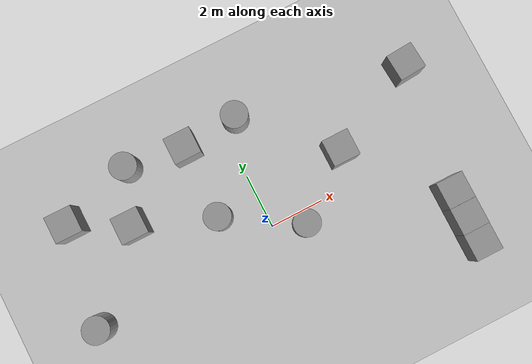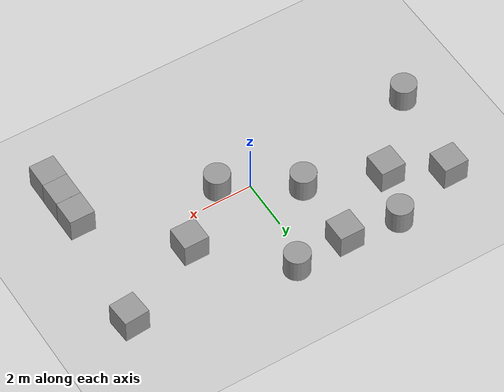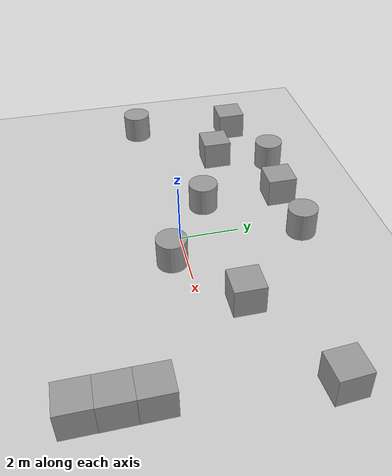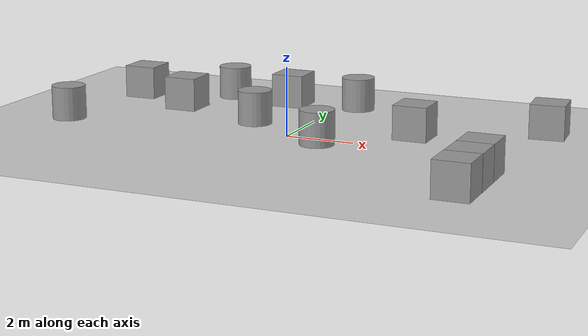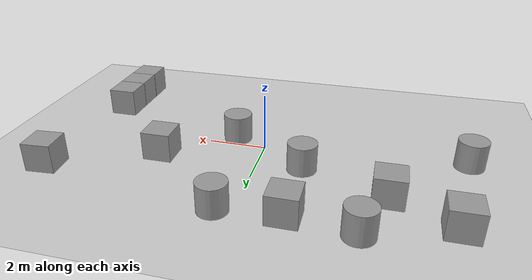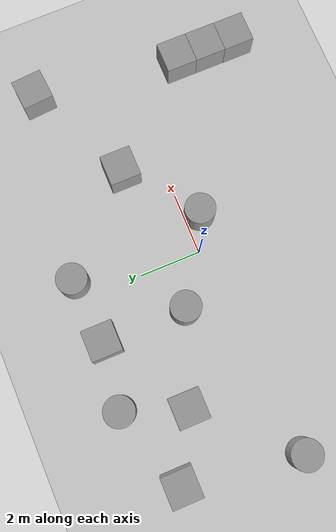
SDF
<sdf version="1.6">
 <world name="default">
  <light name="sun" type="directional">
   <pose>0 0 10 0 -0 0</pose>
   <diffuse>0.8 0.8 0.8 1</diffuse>
   <specular>0.1 0.1 0.1 1</specular>
   <attenuation>
    <range>1000</range>
    <constant>0.9</constant>
    <linear>0.01</linear>
    <quadratic>0.001</quadratic>
   </attenuation>
   <direction>-0.5 0.5 -1</direction>
  </light>
  <model name="ground_plane">
   <static>1</static>
   <link name="link">
    <collision name="collision">
     <geometry><plane><normal>0 0 1</normal><size>100 100</size></plane></geometry>
     <surface><friction><ode><mu>100</mu><mu2>50</mu2></ode></friction></surface>
    </collision>
    <visual name="visual">
     <cast_shadows>0</cast_shadows>
     <geometry><plane><normal>0 0 1</normal><size>100 100</size></plane></geometry>
     <material>
      <script><uri>file://media/materials/scripts/gazebo.material</uri><name>Gazebo/Grey</name></script>
     </material>
    </visual>
   </link>
  </model>
  <physics name="default_physics" default="0" type="ode">
   <real_time_update_rate>1000</real_time_update_rate>
   <max_step_size>0.001</max_step_size>
   <real_time_factor>1</real_time_factor>
   <ode>
    <solver>
     <type>quick</type>
     <iters>150</iters>
     <precon_iters>0</precon_iters>
     <sor>1.4</sor>
     <use_dynamic_moi_rescaling>1</use_dynamic_moi_rescaling>
    </solver>
    <constraints>
     <cfm>1e-05</cfm>
     <erp>0.2</erp>
     <contact_max_correcting_vel>2000</contact_max_correcting_vel>
     <contact_surface_layer>0.01</contact_surface_layer>
    </constraints>
   </ode>
  </physics>
  <scene><ambient>0.4 0.4 0.4 1</ambient><background>0.7 0.7 0.7 1</background><shadows>1</shadows></scene>
  <gravity>0 0 -9.8</gravity>
  <magnetic_field>6e-06 2.3e-05 -4.2e-05</magnetic_field>
  <atmosphere type="adiabatic"/>
  <spherical_coordinates>
   <surface_model>EARTH_WGS84</surface_model>
   <latitude_deg>0</latitude_deg>
   <longitude_deg>0</longitude_deg>
   <elevation>0</elevation>
   <heading_deg>0</heading_deg>
  </spherical_coordinates>
  <model name="unit_box">
   <pose>-1.51784 3.88963 0.5 0 -0 0</pose>
   <link name="link">
    <inertial>
     <mass>1</mass>
     <inertia>
      <ixx>0.166667</ixx>
      <ixy>0</ixy>
      <ixz>0</ixz>
      <iyy>0.166667</iyy>
      <iyz>0</iyz>
      <izz>0.166667</izz>
     </inertia>
    </inertial>
    <collision name="collision"><geometry><box><size>1 1 1</size></box></geometry></collision>
    <visual name="visual">
     <geometry><box><size>1 1 1</size></box></geometry>
     <material>
      <script><name>Gazebo/Grey</name><uri>file://media/materials/scripts/gazebo.material</uri></script>
     </material>
    </visual>
   </link>
  </model>
  <model name="unit_cylinder">
   <pose>1.11203 -0.468258 0.499996 -3e-06 -3e-06 -0.210333</pose>
   <link name="link">
    <inertial>
     <mass>1</mass>
     <inertia><ixx>0.145833</ixx><ixy>0</ixy><ixz>0</ixz><iyy>0.145833</iyy><iyz>0</iyz><izz>0.125</izz></inertia>
    </inertial>
    <collision name="collision">
     <geometry><cylinder><radius>0.5</radius><length>1</length></cylinder></geometry>
    </collision>
    <visual name="visual">
     <geometry><cylinder><radius>0.5</radius><length>1</length></cylinder></geometry>
     <material>
      <script><name>Gazebo/Grey</name><uri>file://media/materials/scripts/gazebo.material</uri></script>
     </material>
    </visual>
   </link>
  </model>
  <model name="unit_box_0">
   <pose>-4.36482 2.23331 0.5 0 -0 0</pose>
   <link name="link">
    <inertial>
     <mass>1</mass>
     <inertia>
      <ixx>0.166667</ixx>
      <ixy>0</ixy>
      <ixz>0</ixz>
      <iyy>0.166667</iyy>
      <iyz>0</iyz>
      <izz>0.166667</izz>
     </inertia>
    </inertial>
    <collision name="collision"><geometry><box><size>1 1 1</size></box></geometry></collision>
    <visual name="visual">
     <geometry><box><size>1 1 1</size></box></geometry>
     <material>
      <script><name>Gazebo/Grey</name><uri>file://media/materials/scripts/gazebo.material</uri></script>
     </material>
    </visual>
   </link>
  </model>
  <model name="unit_cylinder_0">
   <pose>-6.92498 -0.435108 0.499993 4e-06 4e-06 -0</pose>
   <link name="link">
    <inertial>
     <mass>1</mass>
     <inertia><ixx>0.145833</ixx><ixy>0</ixy><ixz>0</ixz><iyy>0.145833</iyy><iyz>0</iyz><izz>0.125</izz></inertia>
    </inertial>
    <collision name="collision">
     <geometry><cylinder><radius>0.5</radius><length>1</length></cylinder></geometry>
    </collision>
    <visual name="visual">
     <geometry><cylinder><radius>0.5</radius><length>1</length></cylinder></geometry>
     <material>
      <script><name>Gazebo/Grey</name><uri>file://media/materials/scripts/gazebo.material</uri></script>
     </material>
    </visual>
   </link>
  </model>
  <model name="unit_box_1">
   <pose>3.3513 1.31405 0.5 0 -0 0</pose>
   <link name="link">
    <inertial>
     <mass>1</mass>
     <inertia>
      <ixx>0.166667</ixx>
      <ixy>0</ixy>
      <ixz>0</ixz>
      <iyy>0.166667</iyy>
      <iyz>0</iyz>
      <izz>0.166667</izz>
     </inertia>
    </inertial>
    <collision name="collision"><geometry><box><size>1 1 1</size></box></geometry></collision>
    <visual name="visual">
     <geometry><box><size>1 1 1</size></box></geometry>
     <material>
      <script><name>Gazebo/Grey</name><uri>file://media/materials/scripts/gazebo.material</uri></script>
     </material>
    </visual>
   </link>
  </model>
  <model name="unit_cylinder_1">
   <pose>0.584898 4.03923 0.499993 4e-06 4e-06 -0</pose>
   <link name="link">
    <inertial>
     <mass>1</mass>
     <inertia><ixx>0.145833</ixx><ixy>0</ixy><ixz>0</ixz><iyy>0.145833</iyy><iyz>0</iyz><izz>0.125</izz></inertia>
    </inertial>
    <collision name="collision">
     <geometry><cylinder><radius>0.5</radius><length>1</length></cylinder></geometry>
    </collision>
    <visual name="visual">
     <geometry><cylinder><radius>0.5</radius><length>1</length></cylinder></geometry>
     <material>
      <script><name>Gazebo/Grey</name><uri>file://media/materials/scripts/gazebo.material</uri></script>
     </material>
    </visual>
   </link>
  </model>
  <model name="unit_cylinder_2">
   <pose>-1.53507 1.1366 0.499997 -4e-06 -4e-06 -0</pose>
   <link name="link">
    <inertial>
     <mass>1</mass>
     <inertia><ixx>0.145833</ixx><ixy>0</ixy><ixz>0</ixz><iyy>0.145833</iyy><iyz>0</iyz><izz>0.125</izz></inertia>
    </inertial>
    <collision name="collision">
     <geometry><cylinder><radius>0.5</radius><length>1</length></cylinder></geometry>
    </collision>
    <visual name="visual">
     <geometry><cylinder><radius>0.5</radius><length>1</length></cylinder></geometry>
     <material>
      <script><name>Gazebo/Grey</name><uri>file://media/materials/scripts/gazebo.material</uri></script>
     </material>
    </visual>
   </link>
  </model>
  <model name="unit_box_2">
   <pose>6.79819 2.97435 0.5 0 -0 0.073405</pose>
   <link name="link">
    <inertial>
     <mass>1</mass>
     <inertia>
      <ixx>0.166667</ixx>
      <ixy>0</ixy>
      <ixz>0</ixz>
      <iyy>0.166667</iyy>
      <iyz>0</iyz>
      <izz>0.166667</izz>
     </inertia>
    </inertial>
    <collision name="collision"><geometry><box><size>1 1 1</size></box></geometry></collision>
    <visual name="visual">
     <geometry><box><size>1 1 1</size></box></geometry>
     <material>
      <script><name>Gazebo/Grey</name><uri>file://media/materials/scripts/gazebo.material</uri></script>
     </material>
    </visual>
   </link>
  </model>
  <model name="unit_cylinder_3">
   <pose>-3.65748 4.18285 0.499997 -4e-06 -4e-06 -0</pose>
   <link name="link">
    <inertial>
     <mass>1</mass>
     <inertia><ixx>0.145833</ixx><ixy>0</ixy><ixz>0</ixz><iyy>0.145833</iyy><iyz>0</iyz><izz>0.125</izz></inertia>
    </inertial>
    <collision name="collision">
     <geometry><cylinder><radius>0.5</radius><length>1</length></cylinder></geometry>
    </collision>
    <visual name="visual">
     <geometry><cylinder><radius>0.5</radius><length>1</length></cylinder></geometry>
     <material>
      <script><name>Gazebo/Grey</name><uri>file://media/materials/scripts/gazebo.material</uri></script>
     </material>
    </visual>
   </link>
  </model>
  <model name="unit_box_3">
   <pose>-6.36525 3.30679 0.5 0 -0 0</pose>
   <link name="link">
    <inertial>
     <mass>1</mass>
     <inertia>
      <ixx>0.166667</ixx>
      <ixy>0</ixy>
      <ixz>0</ixz>
      <iyy>0.166667</iyy>
      <iyz>0</iyz>
      <izz>0.166667</izz>
     </inertia>
    </inertial>
    <collision name="collision"><geometry><box><size>1 1 1</size></box></geometry></collision>
    <visual name="visual">
     <geometry><box><size>1 1 1</size></box></geometry>
     <material>
      <script><name>Gazebo/Grey</name><uri>file://media/materials/scripts/gazebo.material</uri></script>
     </material>
    </visual>
   </link>
  </model>
  <model name="unit_box_4">
   <pose>6.18314 -1.80579 0.5 0 -0 0</pose>
   <link name="link">
    <inertial>
     <mass>1</mass>
     <inertia>
      <ixx>0.166667</ixx>
      <ixy>0</ixy>
      <ixz>0</ixz>
      <iyy>0.166667</iyy>
      <iyz>0</iyz>
      <izz>0.166667</izz>
     </inertia>
    </inertial>
    <collision name="collision"><geometry><box><size>1 1 1</size></box></geometry></collision>
    <visual name="visual">
     <geometry><box><size>1 1 1</size></box></geometry>
     <material>
      <script><name>Gazebo/Grey</name><uri>file://media/materials/scripts/gazebo.material</uri></script>
     </material>
    </visual>
   </link>
  </model>
  <model name="unit_box_5">
   <pose>6.18155 -2.80704 0.5 0 -0 0</pose>
   <link name="link">
    <inertial>
     <mass>1</mass>
     <inertia>
      <ixx>0.166667</ixx>
      <ixy>0</ixy>
      <ixz>0</ixz>
      <iyy>0.166667</iyy>
      <iyz>0</iyz>
      <izz>0.166667</izz>
     </inertia>
    </inertial>
    <collision name="collision"><geometry><box><size>1 1 1</size></box></geometry></collision>
    <visual name="visual">
     <geometry><box><size>1 1 1</size></box></geometry>
     <material>
      <script><name>Gazebo/Grey</name><uri>file://media/materials/scripts/gazebo.material</uri></script>
     </material>
    </visual>
   </link>
  </model>
  <model name="unit_box_6">
   <pose>6.17415 -3.79768 0.5 0 -0 0</pose>
   <link name="link">
    <inertial>
     <mass>1</mass>
     <inertia>
      <ixx>0.166667</ixx>
      <ixy>0</ixy>
      <ixz>0</ixz>
      <iyy>0.166667</iyy>
      <iyz>0</iyz>
      <izz>0.166667</izz>
     </inertia>
    </inertial>
    <collision name="collision"><geometry><box><size>1 1 1</size></box></geometry></collision>
    <visual name="visual">
     <geometry><box><size>1 1 1</size></box></geometry>
     <material>
      <script><name>Gazebo/Grey</name><uri>file://media/materials/scripts/gazebo.material</uri></script>
     </material>
    </visual>
   </link>
  </model>
 </world>
</sdf>
